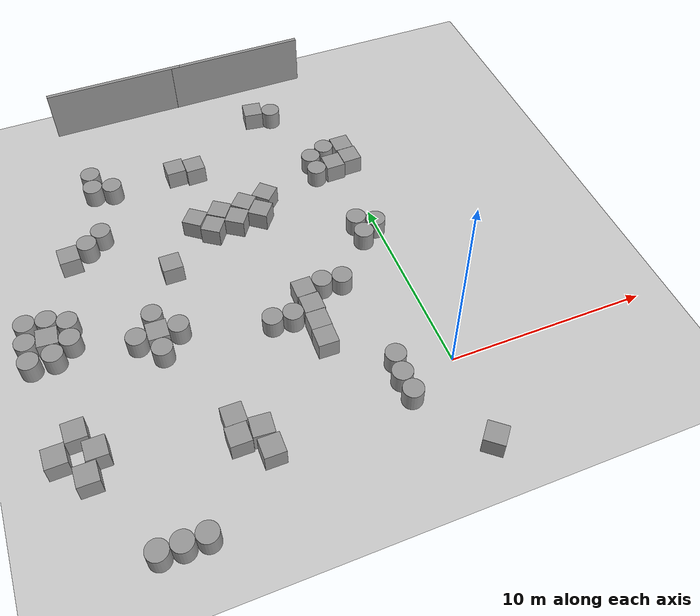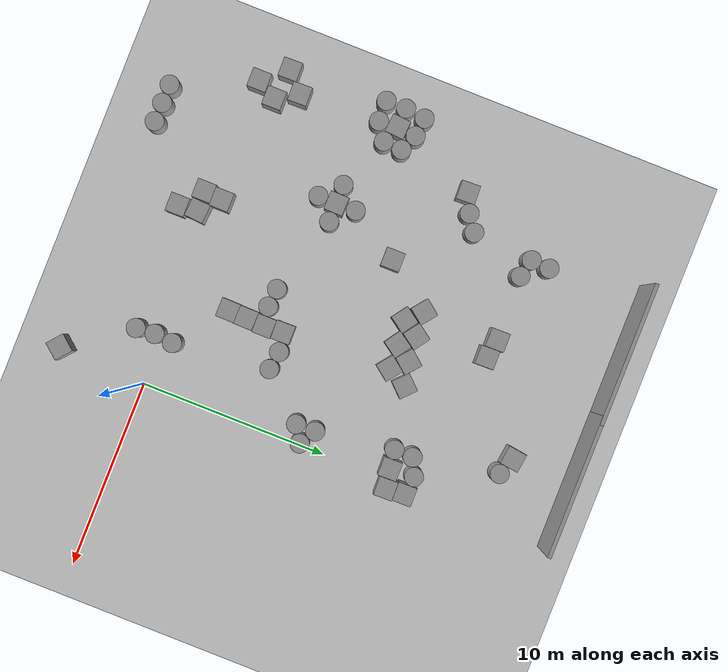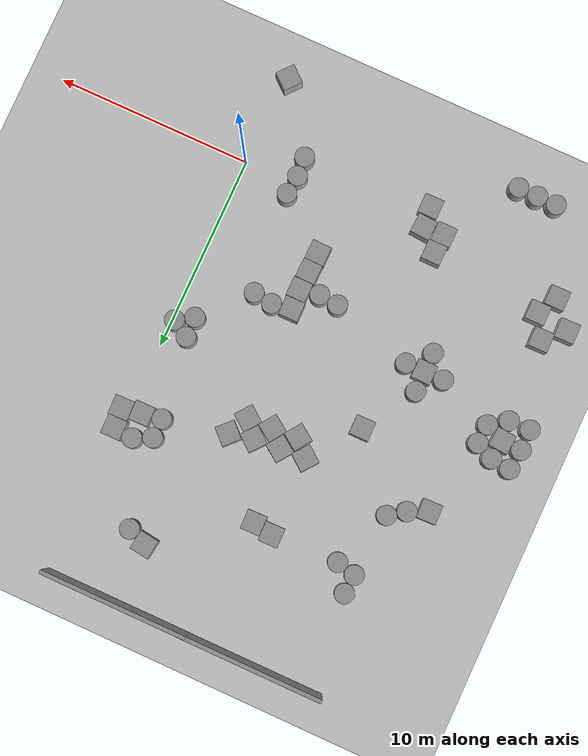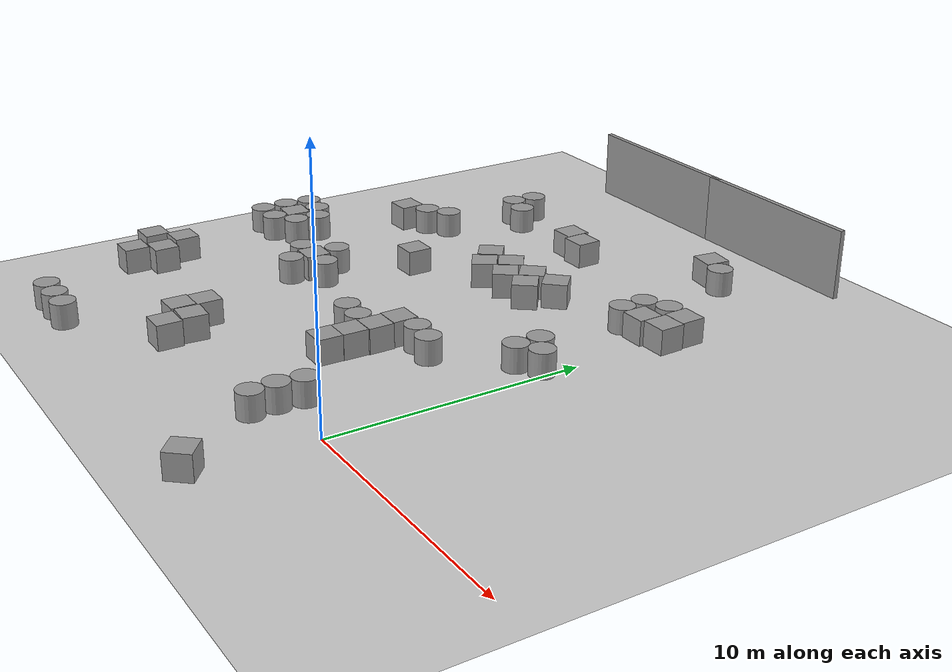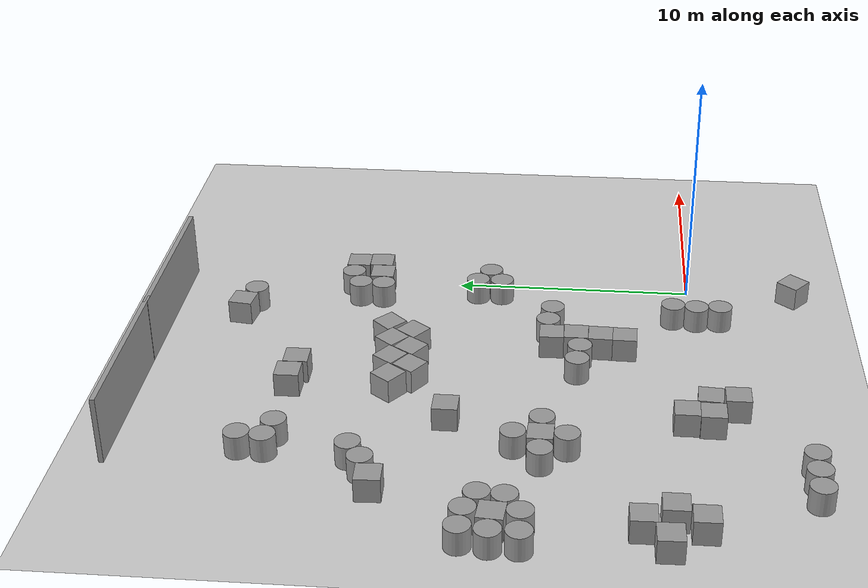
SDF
<sdf version="1.6">
 <world name="default">
  <model name="ground_plane">
   <static>1</static>
   <link name="link">
    <collision name="collision">
     <geometry><plane><normal>0 0 1</normal><size>100 100</size></plane></geometry>
     <surface><friction><ode><mu>100</mu><mu2>50</mu2></ode></friction></surface>
    </collision>
    <visual name="visual">
     <cast_shadows>0</cast_shadows>
     <geometry><plane><normal>0 0 1</normal><size>100 100</size></plane></geometry>
     <material>
      <script><uri>file://media/materials/scripts/gazebo.material</uri><name>Gazebo/Grey</name></script>
     </material>
    </visual>
   </link>
  </model>
  <model name="unit_box_1">
   <pose>-5.0981 4.77867 0.5 0 0 -0.005236</pose>
   <link name="link">
    <inertial>
     <mass>1</mass>
     <inertia>
      <ixx>0.166667</ixx>
      <ixy>0</ixy>
      <ixz>0</ixz>
      <iyy>0.166667</iyy>
      <iyz>0</iyz>
      <izz>0.166667</izz>
     </inertia>
    </inertial>
    <collision name="collision"><geometry><box><size>1 1 1</size></box></geometry></collision>
    <visual name="visual">
     <geometry><box><size>1 1 1</size></box></geometry>
     <material>
      <script><name>Gazebo/Grey</name><uri>file://media/materials/scripts/gazebo.material</uri></script>
     </material>
    </visual>
   </link>
  </model>
  <model name="unit_box_2">
   <pose>-5.14808 3.76937 0.5 0 0 -0.018732</pose>
   <link name="link">
    <inertial>
     <mass>1</mass>
     <inertia>
      <ixx>0.166667</ixx>
      <ixy>0</ixy>
      <ixz>0</ixz>
      <iyy>0.166667</iyy>
      <iyz>0</iyz>
      <izz>0.166667</izz>
     </inertia>
    </inertial>
    <collision name="collision"><geometry><box><size>1 1 1</size></box></geometry></collision>
    <visual name="visual">
     <geometry><box><size>1 1 1</size></box></geometry>
     <material>
      <script><name>Gazebo/Grey</name><uri>file://media/materials/scripts/gazebo.material</uri></script>
     </material>
    </visual>
   </link>
  </model>
  <model name="unit_box_8">
   <pose>-9.3394 -0.542282 0.5 0 0 -0.074034</pose>
   <link name="link">
    <inertial>
     <mass>1</mass>
     <inertia>
      <ixx>0.166667</ixx>
      <ixy>0</ixy>
      <ixz>0</ixz>
      <iyy>0.166667</iyy>
      <iyz>0</iyz>
      <izz>0.166667</izz>
     </inertia>
    </inertial>
    <collision name="collision"><geometry><box><size>1 1 1</size></box></geometry></collision>
    <visual name="visual">
     <geometry><box><size>1 1 1</size></box></geometry>
     <material>
      <script><name>Gazebo/Grey</name><uri>file://media/materials/scripts/gazebo.material</uri></script>
     </material>
    </visual>
   </link>
  </model>
  <model name="unit_cylinder_6">
   <pose>-2.57686 0.723564 0.499942 0 0 -0.000453</pose>
   <link name="link">
    <inertial>
     <mass>1</mass>
     <inertia><ixx>0.145833</ixx><ixy>0</ixy><ixz>0</ixz><iyy>0.145833</iyy><iyz>0</iyz><izz>0.125</izz></inertia>
    </inertial>
    <collision name="collision">
     <geometry><cylinder><radius>0.5</radius><length>1</length></cylinder></geometry>
    </collision>
    <visual name="visual">
     <geometry><cylinder><radius>0.5</radius><length>1</length></cylinder></geometry>
     <material>
      <script><name>Gazebo/Grey</name><uri>file://media/materials/scripts/gazebo.material</uri></script>
     </material>
    </visual>
   </link>
  </model>
  <model name="unit_cylinder_8_0">
   <pose>-0.197454 8.65118 0.499942 0 0 -0.115703</pose>
   <link name="link">
    <inertial>
     <mass>1</mass>
     <inertia><ixx>0.145833</ixx><ixy>0</ixy><ixz>0</ixz><iyy>0.145833</iyy><iyz>0</iyz><izz>0.125</izz></inertia>
    </inertial>
    <collision name="collision">
     <geometry><cylinder><radius>0.5</radius><length>1</length></cylinder></geometry>
    </collision>
    <visual name="visual">
     <geometry><cylinder><radius>0.5</radius><length>1</length></cylinder></geometry>
     <material>
      <script><name>Gazebo/Grey</name><uri>file://media/materials/scripts/gazebo.material</uri></script>
     </material>
    </visual>
   </link>
  </model>
  <model name="unit_box_15">
   <pose>-10.3952 -0.600275 0.5 0 0 -0.001077</pose>
   <link name="link">
    <inertial>
     <mass>1</mass>
     <inertia>
      <ixx>0.166667</ixx>
      <ixy>0</ixy>
      <ixz>0</ixz>
      <iyy>0.166667</iyy>
      <iyz>0</iyz>
      <izz>0.166667</izz>
     </inertia>
    </inertial>
    <collision name="collision"><geometry><box><size>1 1 1</size></box></geometry></collision>
    <visual name="visual">
     <geometry><box><size>1 1 1</size></box></geometry>
     <material>
      <script><name>Gazebo/Grey</name><uri>file://media/materials/scripts/gazebo.material</uri></script>
     </material>
    </visual>
   </link>
  </model>
  <model name="unit_cylinder_26">
   <pose>-2.6867 -0.270452 0.499942 0 -0 0.002292</pose>
   <link name="link">
    <inertial>
     <mass>1</mass>
     <inertia><ixx>0.145833</ixx><ixy>0</ixy><ixz>0</ixz><iyy>0.145833</iyy><iyz>0</iyz><izz>0.125</izz></inertia>
    </inertial>
    <collision name="collision">
     <geometry><cylinder><radius>0.5</radius><length>1</length></cylinder></geometry>
    </collision>
    <visual name="visual">
     <geometry><cylinder><radius>0.5</radius><length>1</length></cylinder></geometry>
     <material>
      <script><name>Gazebo/Grey</name><uri>file://media/materials/scripts/gazebo.material</uri></script>
     </material>
    </visual>
   </link>
  </model>
  <model name="unit_box_34">
   <pose>-9.24528 -1.60585 0.5 0 -0 0</pose>
   <link name="link">
    <inertial>
     <mass>1</mass>
     <inertia>
      <ixx>0.166667</ixx>
      <ixy>0</ixy>
      <ixz>0</ixz>
      <iyy>0.166667</iyy>
      <iyz>0</iyz>
      <izz>0.166667</izz>
     </inertia>
    </inertial>
    <collision name="collision"><geometry><box><size>1 1 1</size></box></geometry></collision>
    <visual name="visual">
     <geometry><box><size>1 1 1</size></box></geometry>
     <material>
      <script><name>Gazebo/Grey</name><uri>file://media/materials/scripts/gazebo.material</uri></script>
     </material>
    </visual>
   </link>
  </model>
  <model name="unit_box_37">
   <pose>-12.2689 5.91862 0.5 0 0 -0.024908</pose>
   <link name="link">
    <inertial>
     <mass>1</mass>
     <inertia>
      <ixx>0.166667</ixx>
      <ixy>0</ixy>
      <ixz>0</ixz>
      <iyy>0.166667</iyy>
      <iyz>0</iyz>
      <izz>0.166667</izz>
     </inertia>
    </inertial>
    <collision name="collision"><geometry><box><size>1 1 1</size></box></geometry></collision>
    <visual name="visual">
     <geometry><box><size>1 1 1</size></box></geometry>
     <material>
      <script><name>Gazebo/Grey</name><uri>file://media/materials/scripts/gazebo.material</uri></script>
     </material>
    </visual>
   </link>
  </model>
  <model name="unit_cylinder_32">
   <pose>-13.2104 16.2333 0.499942 0 -0 0.006978</pose>
   <link name="link">
    <inertial>
     <mass>1</mass>
     <inertia><ixx>0.145833</ixx><ixy>0</ixy><ixz>0</ixz><iyy>0.145833</iyy><iyz>0</iyz><izz>0.125</izz></inertia>
    </inertial>
    <collision name="collision">
     <geometry><cylinder><radius>0.5</radius><length>1</length></cylinder></geometry>
    </collision>
    <visual name="visual">
     <geometry><cylinder><radius>0.5</radius><length>1</length></cylinder></geometry>
     <material>
      <script><name>Gazebo/Grey</name><uri>file://media/materials/scripts/gazebo.material</uri></script>
     </material>
    </visual>
   </link>
  </model>
  <model name="unit_cylinder_33">
   <pose>-13.1457 17.2313 0.499942 0 0 -0.001377</pose>
   <link name="link">
    <inertial>
     <mass>1</mass>
     <inertia><ixx>0.145833</ixx><ixy>0</ixy><ixz>0</ixz><iyy>0.145833</iyy><iyz>0</iyz><izz>0.125</izz></inertia>
    </inertial>
    <collision name="collision">
     <geometry><cylinder><radius>0.5</radius><length>1</length></cylinder></geometry>
    </collision>
    <visual name="visual">
     <geometry><cylinder><radius>0.5</radius><length>1</length></cylinder></geometry>
     <material>
      <script><name>Gazebo/Grey</name><uri>file://media/materials/scripts/gazebo.material</uri></script>
     </material>
    </visual>
   </link>
  </model>
  <model name="unit_cylinder_34">
   <pose>-2.61658 -1.268 0.499942 0 0 -0.0024</pose>
   <link name="link">
    <inertial>
     <mass>1</mass>
     <inertia><ixx>0.145833</ixx><ixy>0</ixy><ixz>0</ixz><iyy>0.145833</iyy><iyz>0</iyz><izz>0.125</izz></inertia>
    </inertial>
    <collision name="collision">
     <geometry><cylinder><radius>0.5</radius><length>1</length></cylinder></geometry>
    </collision>
    <visual name="visual">
     <geometry><cylinder><radius>0.5</radius><length>1</length></cylinder></geometry>
     <material>
      <script><name>Gazebo/Grey</name><uri>file://media/materials/scripts/gazebo.material</uri></script>
     </material>
    </visual>
   </link>
  </model>
  <model name="unit_cylinder_8_5">
   <pose>-11.2686 5.90923 0.499942 0 0 -0.009421</pose>
   <link name="link">
    <inertial>
     <mass>1</mass>
     <inertia><ixx>0.145833</ixx><ixy>0</ixy><ixz>0</ixz><iyy>0.145833</iyy><iyz>0</iyz><izz>0.125</izz></inertia>
    </inertial>
    <collision name="collision">
     <geometry><cylinder><radius>0.5</radius><length>1</length></cylinder></geometry>
    </collision>
    <visual name="visual">
     <geometry><cylinder><radius>0.5</radius><length>1</length></cylinder></geometry>
     <material>
      <script><name>Gazebo/Grey</name><uri>file://media/materials/scripts/gazebo.material</uri></script>
     </material>
    </visual>
   </link>
  </model>
  <model name="unit_cylinder_8_6">
   <pose>-13.2697 5.89996 0.499942 0 0 -0.00064</pose>
   <link name="link">
    <inertial>
     <mass>1</mass>
     <inertia><ixx>0.145833</ixx><ixy>0</ixy><ixz>0</ixz><iyy>0.145833</iyy><iyz>0</iyz><izz>0.125</izz></inertia>
    </inertial>
    <collision name="collision">
     <geometry><cylinder><radius>0.5</radius><length>1</length></cylinder></geometry>
    </collision>
    <visual name="visual">
     <geometry><cylinder><radius>0.5</radius><length>1</length></cylinder></geometry>
     <material>
      <script><name>Gazebo/Grey</name><uri>file://media/materials/scripts/gazebo.material</uri></script>
     </material>
    </visual>
   </link>
  </model>
  <model name="unit_cylinder_8_7">
   <pose>-12.2859 4.91815 0.499942 0 -0 0.004002</pose>
   <link name="link">
    <inertial>
     <mass>1</mass>
     <inertia><ixx>0.145833</ixx><ixy>0</ixy><ixz>0</ixz><iyy>0.145833</iyy><iyz>0</iyz><izz>0.125</izz></inertia>
    </inertial>
    <collision name="collision">
     <geometry><cylinder><radius>0.5</radius><length>1</length></cylinder></geometry>
    </collision>
    <visual name="visual">
     <geometry><cylinder><radius>0.5</radius><length>1</length></cylinder></geometry>
     <material>
      <script><name>Gazebo/Grey</name><uri>file://media/materials/scripts/gazebo.material</uri></script>
     </material>
    </visual>
   </link>
  </model>
  <model name="unit_cylinder_8_8">
   <pose>-12.2792 6.95978 0.499942 0 -0 0</pose>
   <link name="link">
    <inertial>
     <mass>1</mass>
     <inertia><ixx>0.145833</ixx><ixy>0</ixy><ixz>0</ixz><iyy>0.145833</iyy><iyz>0</iyz><izz>0.125</izz></inertia>
    </inertial>
    <collision name="collision">
     <geometry><cylinder><radius>0.5</radius><length>1</length></cylinder></geometry>
    </collision>
    <visual name="visual">
     <geometry><cylinder><radius>0.5</radius><length>1</length></cylinder></geometry>
     <material>
      <script><name>Gazebo/Grey</name><uri>file://media/materials/scripts/gazebo.material</uri></script>
     </material>
    </visual>
   </link>
  </model>
  <model name="unit_box_16">
   <pose>-7.78105 15.9504 0.5 0 -0 0.016362</pose>
   <link name="link">
    <inertial>
     <mass>1</mass>
     <inertia>
      <ixx>0.166667</ixx>
      <ixy>0</ixy>
      <ixz>0</ixz>
      <iyy>0.166667</iyy>
      <iyz>0</iyz>
      <izz>0.166667</izz>
     </inertia>
    </inertial>
    <collision name="collision"><geometry><box><size>1 1 1</size></box></geometry></collision>
    <visual name="visual">
     <geometry><box><size>1 1 1</size></box></geometry>
     <material>
      <script><name>Gazebo/Grey</name><uri>file://media/materials/scripts/gazebo.material</uri></script>
     </material>
    </visual>
   </link>
  </model>
  <model name="unit_box_17">
   <pose>-8.79856 16.1214 0.5 0 -0 0.008021</pose>
   <link name="link">
    <inertial>
     <mass>1</mass>
     <inertia>
      <ixx>0.166667</ixx>
      <ixy>0</ixy>
      <ixz>0</ixz>
      <iyy>0.166667</iyy>
      <iyz>0</iyz>
      <izz>0.166667</izz>
     </inertia>
    </inertial>
    <collision name="collision"><geometry><box><size>1 1 1</size></box></geometry></collision>
    <visual name="visual">
     <geometry><box><size>1 1 1</size></box></geometry>
     <material>
      <script><name>Gazebo/Grey</name><uri>file://media/materials/scripts/gazebo.material</uri></script>
     </material>
    </visual>
   </link>
  </model>
  <model name="unit_cylinder_8">
   <pose>-2.48633 18.702 0.499942 0 -0 0.042694</pose>
   <link name="link">
    <inertial>
     <mass>1</mass>
     <inertia><ixx>0.145833</ixx><ixy>0</ixy><ixz>0</ixz><iyy>0.145833</iyy><iyz>0</iyz><izz>0.125</izz></inertia>
    </inertial>
    <collision name="collision">
     <geometry><cylinder><radius>0.5</radius><length>1</length></cylinder></geometry>
    </collision>
    <visual name="visual">
     <geometry><cylinder><radius>0.5</radius><length>1</length></cylinder></geometry>
     <material>
      <script><name>Gazebo/Grey</name><uri>file://media/materials/scripts/gazebo.material</uri></script>
     </material>
    </visual>
   </link>
  </model>
  <model name="unit_box_20_0">
   <pose>-3.44337 19.0871 0.5 0 0 -0.134541</pose>
   <link name="link">
    <inertial>
     <mass>1</mass>
     <inertia>
      <ixx>0.166667</ixx>
      <ixy>0</ixy>
      <ixz>0</ixz>
      <iyy>0.166667</iyy>
      <iyz>0</iyz>
      <izz>0.166667</izz>
     </inertia>
    </inertial>
    <collision name="collision"><geometry><box><size>1 1 1</size></box></geometry></collision>
    <visual name="visual">
     <geometry><box><size>1 1 1</size></box></geometry>
     <material>
      <script><name>Gazebo/Grey</name><uri>file://media/materials/scripts/gazebo.material</uri></script>
     </material>
    </visual>
   </link>
  </model>
  <model name="unit_cylinder_47">
   <pose>-1.04611 8.12184 0.499942 0 -0 0.038058</pose>
   <link name="link">
    <inertial>
     <mass>1</mass>
     <inertia><ixx>0.145833</ixx><ixy>0</ixy><ixz>0</ixz><iyy>0.145833</iyy><iyz>0</iyz><izz>0.125</izz></inertia>
    </inertial>
    <collision name="collision">
     <geometry><cylinder><radius>0.5</radius><length>1</length></cylinder></geometry>
    </collision>
    <visual name="visual">
     <geometry><cylinder><radius>0.5</radius><length>1</length></cylinder></geometry>
     <material>
      <script><name>Gazebo/Grey</name><uri>file://media/materials/scripts/gazebo.material</uri></script>
     </material>
    </visual>
   </link>
  </model>
  <model name="unit_cylinder_9_0">
   <pose>-14.2664 12.4174 0.499942 0 0 -0.02041</pose>
   <link name="link">
    <inertial>
     <mass>1</mass>
     <inertia><ixx>0.145833</ixx><ixy>0</ixy><ixz>0</ixz><iyy>0.145833</iyy><iyz>0</iyz><izz>0.125</izz></inertia>
    </inertial>
    <collision name="collision">
     <geometry><cylinder><radius>0.5</radius><length>1</length></cylinder></geometry>
    </collision>
    <visual name="visual">
     <geometry><cylinder><radius>0.5</radius><length>1</length></cylinder></geometry>
     <material>
      <script><name>Gazebo/Grey</name><uri>file://media/materials/scripts/gazebo.material</uri></script>
     </material>
    </visual>
   </link>
  </model>
  <model name="unit_cylinder_9_1">
   <pose>-13.4507 12.9959 0.499942 0 0 -0.001885</pose>
   <link name="link">
    <inertial>
     <mass>1</mass>
     <inertia><ixx>0.145833</ixx><ixy>0</ixy><ixz>0</ixz><iyy>0.145833</iyy><iyz>0</iyz><izz>0.125</izz></inertia>
    </inertial>
    <collision name="collision">
     <geometry><cylinder><radius>0.5</radius><length>1</length></cylinder></geometry>
    </collision>
    <visual name="visual">
     <geometry><cylinder><radius>0.5</radius><length>1</length></cylinder></geometry>
     <material>
      <script><name>Gazebo/Grey</name><uri>file://media/materials/scripts/gazebo.material</uri></script>
     </material>
    </visual>
   </link>
  </model>
  <model name="unit_cylinder_9_3">
   <pose>-1.05619 9.16437 0.499942 0 -0 0.050097</pose>
   <link name="link">
    <inertial>
     <mass>1</mass>
     <inertia><ixx>0.145833</ixx><ixy>0</ixy><ixz>0</ixz><iyy>0.145833</iyy><iyz>0</iyz><izz>0.125</izz></inertia>
    </inertial>
    <collision name="collision">
     <geometry><cylinder><radius>0.5</radius><length>1</length></cylinder></geometry>
    </collision>
    <visual name="visual">
     <geometry><cylinder><radius>0.5</radius><length>1</length></cylinder></geometry>
     <material>
      <script><name>Gazebo/Grey</name><uri>file://media/materials/scripts/gazebo.material</uri></script>
     </material>
    </visual>
   </link>
  </model>
  <model name="unit_box_22_0">
   <pose>0.335483 13.5803 0.5 0 -0 0.021221</pose>
   <link name="link">
    <inertial>
     <mass>1</mass>
     <inertia>
      <ixx>0.166667</ixx>
      <ixy>0</ixy>
      <ixz>0</ixz>
      <iyy>0.166667</iyy>
      <iyz>0</iyz>
      <izz>0.166667</izz>
     </inertia>
    </inertial>
    <collision name="collision"><geometry><box><size>1 1 1</size></box></geometry></collision>
    <visual name="visual">
     <geometry><box><size>1 1 1</size></box></geometry>
     <material>
      <script><name>Gazebo/Grey</name><uri>file://media/materials/scripts/gazebo.material</uri></script>
     </material>
    </visual>
   </link>
  </model>
  <model name="unit_box_22_1">
   <pose>-0.673832 13.4194 0.5 0 -0 0.012386</pose>
   <link name="link">
    <inertial>
     <mass>1</mass>
     <inertia>
      <ixx>0.166667</ixx>
      <ixy>0</ixy>
      <ixz>0</ixz>
      <iyy>0.166667</iyy>
      <iyz>0</iyz>
      <izz>0.166667</izz>
     </inertia>
    </inertial>
    <collision name="collision"><geometry><box><size>1 1 1</size></box></geometry></collision>
    <visual name="visual">
     <geometry><box><size>1 1 1</size></box></geometry>
     <material>
      <script><name>Gazebo/Grey</name><uri>file://media/materials/scripts/gazebo.material</uri></script>
     </material>
    </visual>
   </link>
  </model>
  <model name="unit_box_3">
   <pose>-17.0576 7.40549 0.5 0 0 -0.081756</pose>
   <link name="link">
    <inertial>
     <mass>1</mass>
     <inertia>
      <ixx>0.166667</ixx>
      <ixy>0</ixy>
      <ixz>0</ixz>
      <iyy>0.166667</iyy>
      <iyz>0</iyz>
      <izz>0.166667</izz>
     </inertia>
    </inertial>
    <collision name="collision"><geometry><box><size>1 1 1</size></box></geometry></collision>
    <visual name="visual">
     <geometry><box><size>1 1 1</size></box></geometry>
     <material>
      <script><name>Gazebo/Grey</name><uri>file://media/materials/scripts/gazebo.material</uri></script>
     </material>
    </visual>
   </link>
  </model>
  <model name="unit_cylinder_36">
   <pose>-16.9316 8.41638 0.499942 0 -0 0.132036</pose>
   <link name="link">
    <inertial>
     <mass>1</mass>
     <inertia><ixx>0.145833</ixx><ixy>0</ixy><ixz>0</ixz><iyy>0.145833</iyy><iyz>0</iyz><izz>0.125</izz></inertia>
    </inertial>
    <collision name="collision">
     <geometry><cylinder><radius>0.5</radius><length>1</length></cylinder></geometry>
    </collision>
    <visual name="visual">
     <geometry><cylinder><radius>0.5</radius><length>1</length></cylinder></geometry>
     <material>
      <script><name>Gazebo/Grey</name><uri>file://media/materials/scripts/gazebo.material</uri></script>
     </material>
    </visual>
   </link>
  </model>
  <model name="unit_box_18_clone">
   <pose>-0.283506 -4.5515 0.5 0 -0 0.870361</pose>
   <link name="link">
    <inertial>
     <mass>1</mass>
     <inertia>
      <ixx>0.166667</ixx>
      <ixy>0</ixy>
      <ixz>0</ixz>
      <iyy>0.166667</iyy>
      <iyz>0</iyz>
      <izz>0.166667</izz>
     </inertia>
    </inertial>
    <collision name="collision"><geometry><box><size>1 1 1</size></box></geometry></collision>
    <visual name="visual">
     <geometry><box><size>1 1 1</size></box></geometry>
     <material>
      <script><name>Gazebo/Grey</name><uri>file://media/materials/scripts/gazebo.material</uri></script>
     </material>
    </visual>
   </link>
  </model>
  <model name="unit_box_41">
   <pose>-15.251 11.9682 0.5 0 -0 0.035962</pose>
   <link name="link">
    <inertial>
     <mass>1</mass>
     <inertia>
      <ixx>0.166667</ixx>
      <ixy>0</ixy>
      <ixz>0</ixz>
      <iyy>0.166667</iyy>
      <iyz>0</iyz>
      <izz>0.166667</izz>
     </inertia>
    </inertial>
    <collision name="collision"><geometry><box><size>1 1 1</size></box></geometry></collision>
    <visual name="visual">
     <geometry><box><size>1 1 1</size></box></geometry>
     <material>
      <script><name>Gazebo/Grey</name><uri>file://media/materials/scripts/gazebo.material</uri></script>
     </material>
    </visual>
   </link>
  </model>
  <model name="unit_box_44">
   <pose>-10.3091 0.399738 0.5 0 0 -0.001056</pose>
   <link name="link">
    <inertial>
     <mass>1</mass>
     <inertia>
      <ixx>0.166667</ixx>
      <ixy>0</ixy>
      <ixz>0</ixz>
      <iyy>0.166667</iyy>
      <iyz>0</iyz>
      <izz>0.166667</izz>
     </inertia>
    </inertial>
    <collision name="collision"><geometry><box><size>1 1 1</size></box></geometry></collision>
    <visual name="visual">
     <geometry><box><size>1 1 1</size></box></geometry>
     <material>
      <script><name>Gazebo/Grey</name><uri>file://media/materials/scripts/gazebo.material</uri></script>
     </material>
    </visual>
   </link>
  </model>
  <model name="unit_box_33_0">
   <pose>0.262747 14.5848 0.5 0 -0 0.00954</pose>
   <link name="link">
    <inertial>
     <mass>1</mass>
     <inertia>
      <ixx>0.166667</ixx>
      <ixy>0</ixy>
      <ixz>0</ixz>
      <iyy>0.166667</iyy>
      <iyz>0</iyz>
      <izz>0.166667</izz>
     </inertia>
    </inertial>
    <collision name="collision"><geometry><box><size>1 1 1</size></box></geometry></collision>
    <visual name="visual">
     <geometry><box><size>1 1 1</size></box></geometry>
     <material>
      <script><name>Gazebo/Grey</name><uri>file://media/materials/scripts/gazebo.material</uri></script>
     </material>
    </visual>
   </link>
  </model>
  <model name="unit_cylinder_37">
   <pose>-0.738421 14.6965 0.499942 0 0 -0.075601</pose>
   <link name="link">
    <inertial>
     <mass>1</mass>
     <inertia><ixx>0.145833</ixx><ixy>0</ixy><ixz>0</ixz><iyy>0.145833</iyy><iyz>0</iyz><izz>0.125</izz></inertia>
    </inertial>
    <collision name="collision">
     <geometry><cylinder><radius>0.5</radius><length>1</length></cylinder></geometry>
    </collision>
    <visual name="visual">
     <geometry><cylinder><radius>0.5</radius><length>1</length></cylinder></geometry>
     <material>
      <script><name>Gazebo/Grey</name><uri>file://media/materials/scripts/gazebo.material</uri></script>
     </material>
    </visual>
   </link>
  </model>
  <model name="unit_cylinder_38">
   <pose>-1.64861 14.2683 0.499942 0 0 -0.024059</pose>
   <link name="link">
    <inertial>
     <mass>1</mass>
     <inertia><ixx>0.145833</ixx><ixy>0</ixy><ixz>0</ixz><iyy>0.145833</iyy><iyz>0</iyz><izz>0.125</izz></inertia>
    </inertial>
    <collision name="collision">
     <geometry><cylinder><radius>0.5</radius><length>1</length></cylinder></geometry>
    </collision>
    <visual name="visual">
     <geometry><cylinder><radius>0.5</radius><length>1</length></cylinder></geometry>
     <material>
      <script><name>Gazebo/Grey</name><uri>file://media/materials/scripts/gazebo.material</uri></script>
     </material>
    </visual>
   </link>
  </model>
  <model name="unit_box_18_clone_clone">
   <pose>-8.76046 12.1182 0.5 0 -0 0.91408</pose>
   <link name="link">
    <inertial>
     <mass>1</mass>
     <inertia>
      <ixx>0.166667</ixx>
      <ixy>0</ixy>
      <ixz>0</ixz>
      <iyy>0.166667</iyy>
      <iyz>0</iyz>
      <izz>0.166667</izz>
     </inertia>
    </inertial>
    <collision name="collision"><geometry><box><size>1 1 1</size></box></geometry></collision>
    <visual name="visual">
     <geometry><box><size>1 1 1</size></box></geometry>
     <material>
      <script><name>Gazebo/Grey</name><uri>file://media/materials/scripts/gazebo.material</uri></script>
     </material>
    </visual>
   </link>
  </model>
  <model name="unit_box_18_clone_clone_0">
   <pose>-7.44435 12.2083 0.5 0 -0 0.948652</pose>
   <link name="link">
    <inertial>
     <mass>1</mass>
     <inertia>
      <ixx>0.166667</ixx>
      <ixy>0</ixy>
      <ixz>0</ixz>
      <iyy>0.166667</iyy>
      <iyz>0</iyz>
      <izz>0.166667</izz>
     </inertia>
    </inertial>
    <collision name="collision"><geometry><box><size>1 1 1</size></box></geometry></collision>
    <visual name="visual">
     <geometry><box><size>1 1 1</size></box></geometry>
     <material>
      <script><name>Gazebo/Grey</name><uri>file://media/materials/scripts/gazebo.material</uri></script>
     </material>
    </visual>
   </link>
  </model>
  <model name="unit_box_18_clone_clone_1">
   <pose>-6.09621 12.3085 0.5 0 -0 0.871473</pose>
   <link name="link">
    <inertial>
     <mass>1</mass>
     <inertia>
      <ixx>0.166667</ixx>
      <ixy>0</ixy>
      <ixz>0</ixz>
      <iyy>0.166667</iyy>
      <iyz>0</iyz>
      <izz>0.166667</izz>
     </inertia>
    </inertial>
    <collision name="collision"><geometry><box><size>1 1 1</size></box></geometry></collision>
    <visual name="visual">
     <geometry><box><size>1 1 1</size></box></geometry>
     <material>
      <script><name>Gazebo/Grey</name><uri>file://media/materials/scripts/gazebo.material</uri></script>
     </material>
    </visual>
   </link>
  </model>
  <model name="unit_box_18_clone_clone_2">
   <pose>-4.86881 12.5616 0.5 0 -0 0.809134</pose>
   <link name="link">
    <inertial>
     <mass>1</mass>
     <inertia>
      <ixx>0.166667</ixx>
      <ixy>0</ixy>
      <ixz>0</ixz>
      <iyy>0.166667</iyy>
      <iyz>0</iyz>
      <izz>0.166667</izz>
     </inertia>
    </inertial>
    <collision name="collision"><geometry><box><size>1 1 1</size></box></geometry></collision>
    <visual name="visual">
     <geometry><box><size>1 1 1</size></box></geometry>
     <material>
      <script><name>Gazebo/Grey</name><uri>file://media/materials/scripts/gazebo.material</uri></script>
     </material>
    </visual>
   </link>
  </model>
  <model name="unit_cylinder_11">
   <pose>-12.2364 16.0064 0.499942 0 0 -5.6e-05</pose>
   <link name="link">
    <inertial>
     <mass>1</mass>
     <inertia><ixx>0.145833</ixx><ixy>0</ixy><ixz>0</ixz><iyy>0.145833</iyy><iyz>0</iyz><izz>0.125</izz></inertia>
    </inertial>
    <collision name="collision">
     <geometry><cylinder><radius>0.5</radius><length>1</length></cylinder></geometry>
    </collision>
    <visual name="visual">
     <geometry><cylinder><radius>0.5</radius><length>1</length></cylinder></geometry>
     <material>
      <script><name>Gazebo/Grey</name><uri>file://media/materials/scripts/gazebo.material</uri></script>
     </material>
    </visual>
   </link>
  </model>
  <model name="grey_wall">
   <static>1</static>
   <link name="link">
    <pose>0 0 1.4 0 -0 0</pose>
    <collision name="collision"><geometry><box><size>7.5 0.2 2.8</size></box></geometry></collision>
    <visual name="visual">
     <cast_shadows>0</cast_shadows>
     <geometry><box><size>7.5 0.2 2.8</size></box></geometry>
     <material>
      <script>
       <uri>model://grey_wall/materials/scripts</uri>
       <uri>model://grey_wall/materials/textures</uri>
       <name>vrc/grey_wall</name>
      </script>
     </material>
    </visual>
   </link>
   <pose>-10.4226 22.1655 0 0 -0 0</pose>
  </model>
  <model name="grey_wall_0">
   <static>1</static>
   <link name="link">
    <pose>0 0 1.4 0 -0 0</pose>
    <collision name="collision"><geometry><box><size>7.5 0.2 2.8</size></box></geometry></collision>
    <visual name="visual">
     <cast_shadows>0</cast_shadows>
     <geometry><box><size>7.5 0.2 2.8</size></box></geometry>
     <material>
      <script>
       <uri>model://grey_wall/materials/scripts</uri>
       <uri>model://grey_wall/materials/textures</uri>
       <name>vrc/grey_wall</name>
      </script>
     </material>
    </visual>
   </link>
   <pose>-3.40136 22.1568 0 0 -0 0</pose>
  </model>
  <model name="unit_box_33">
   <pose>-5.14925 5.78806 0.5 0 -0 0.013953</pose>
   <link name="link">
    <inertial>
     <mass>1</mass>
     <inertia>
      <ixx>0.166667</ixx>
      <ixy>0</ixy>
      <ixz>0</ixz>
      <iyy>0.166667</iyy>
      <iyz>0</iyz>
      <izz>0.166667</izz>
     </inertia>
    </inertial>
    <collision name="collision"><geometry><box><size>1 1 1</size></box></geometry></collision>
    <visual name="visual">
     <geometry><box><size>1 1 1</size></box></geometry>
     <material>
      <script><name>Gazebo/Grey</name><uri>file://media/materials/scripts/gazebo.material</uri></script>
     </material>
    </visual>
   </link>
  </model>
  <model name="unit_box_42">
   <pose>-5.18032 2.76921 0.5 0 0 -0.017566</pose>
   <link name="link">
    <inertial>
     <mass>1</mass>
     <inertia>
      <ixx>0.166667</ixx>
      <ixy>0</ixy>
      <ixz>0</ixz>
      <iyy>0.166667</iyy>
      <iyz>0</iyz>
      <izz>0.166667</izz>
     </inertia>
    </inertial>
    <collision name="collision"><geometry><box><size>1 1 1</size></box></geometry></collision>
    <visual name="visual">
     <geometry><box><size>1 1 1</size></box></geometry>
     <material>
      <script><name>Gazebo/Grey</name><uri>file://media/materials/scripts/gazebo.material</uri></script>
     </material>
    </visual>
   </link>
  </model>
  <model name="unit_box_18_clone_clone_0_clone">
   <pose>-8.01996 11.3323 0.5 0 -0 0.960879</pose>
   <link name="link">
    <inertial>
     <mass>1</mass>
     <inertia>
      <ixx>0.166667</ixx>
      <ixy>0</ixy>
      <ixz>0</ixz>
      <iyy>0.166667</iyy>
      <iyz>0</iyz>
      <izz>0.166667</izz>
     </inertia>
    </inertial>
    <collision name="collision"><geometry><box><size>1 1 1</size></box></geometry></collision>
    <visual name="visual">
     <geometry><box><size>1 1 1</size></box></geometry>
     <material>
      <script><name>Gazebo/Grey</name><uri>file://media/materials/scripts/gazebo.material</uri></script>
     </material>
    </visual>
   </link>
  </model>
  <model name="unit_box_18_clone_clone_0_clone_0">
   <pose>-6.7163 11.4562 0.5 0 -0 0.967725</pose>
   <link name="link">
    <inertial>
     <mass>1</mass>
     <inertia>
      <ixx>0.166667</ixx>
      <ixy>0</ixy>
      <ixz>0</ixz>
      <iyy>0.166667</iyy>
      <iyz>0</iyz>
      <izz>0.166667</izz>
     </inertia>
    </inertial>
    <collision name="collision"><geometry><box><size>1 1 1</size></box></geometry></collision>
    <visual name="visual">
     <geometry><box><size>1 1 1</size></box></geometry>
     <material>
      <script><name>Gazebo/Grey</name><uri>file://media/materials/scripts/gazebo.material</uri></script>
     </material>
    </visual>
   </link>
  </model>
  <model name="unit_box_18_clone_clone_0_clone_1">
   <pose>-5.43294 11.5101 0.5 0 -0 0.913519</pose>
   <link name="link">
    <inertial>
     <mass>1</mass>
     <inertia>
      <ixx>0.166667</ixx>
      <ixy>0</ixy>
      <ixz>0</ixz>
      <iyy>0.166667</iyy>
      <iyz>0</iyz>
      <izz>0.166667</izz>
     </inertia>
    </inertial>
    <collision name="collision"><geometry><box><size>1 1 1</size></box></geometry></collision>
    <visual name="visual">
     <geometry><box><size>1 1 1</size></box></geometry>
     <material>
      <script><name>Gazebo/Grey</name><uri>file://media/materials/scripts/gazebo.material</uri></script>
     </material>
    </visual>
   </link>
  </model>
  <model name="unit_cylinder_14_1">
   <pose>-1.67205 13.2663 0.499942 0 0 -0.009614</pose>
   <link name="link">
    <inertial>
     <mass>1</mass>
     <inertia><ixx>0.145833</ixx><ixy>0</ixy><ixz>0</ixz><iyy>0.145833</iyy><iyz>0</iyz><izz>0.125</izz></inertia>
    </inertial>
    <collision name="collision">
     <geometry><cylinder><radius>0.5</radius><length>1</length></cylinder></geometry>
    </collision>
    <visual name="visual">
     <geometry><cylinder><radius>0.5</radius><length>1</length></cylinder></geometry>
     <material>
      <script><name>Gazebo/Grey</name><uri>file://media/materials/scripts/gazebo.material</uri></script>
     </material>
    </visual>
   </link>
  </model>
  <model name="unit_box_49">
   <pose>-10.6583 9.64281 0.5 0 -0 0</pose>
   <link name="link">
    <inertial>
     <mass>1</mass>
     <inertia>
      <ixx>0.166667</ixx>
      <ixy>0</ixy>
      <ixz>0</ixz>
      <iyy>0.166667</iyy>
      <iyz>0</iyz>
      <izz>0.166667</izz>
     </inertia>
    </inertial>
    <collision name="collision"><geometry><box><size>1 1 1</size></box></geometry></collision>
    <visual name="visual">
     <geometry><box><size>1 1 1</size></box></geometry>
     <material>
      <script><name>Gazebo/Grey</name><uri>file://media/materials/scripts/gazebo.material</uri></script>
     </material>
    </visual>
   </link>
  </model>
  <model name="unit_cylinder_14_5">
   <pose>-6.09922 4.6042 0.499942 0 -0 0.003334</pose>
   <link name="link">
    <inertial>
     <mass>1</mass>
     <inertia><ixx>0.145833</ixx><ixy>0</ixy><ixz>0</ixz><iyy>0.145833</iyy><iyz>0</iyz><izz>0.125</izz></inertia>
    </inertial>
    <collision name="collision">
     <geometry><cylinder><radius>0.5</radius><length>1</length></cylinder></geometry>
    </collision>
    <visual name="visual">
     <geometry><cylinder><radius>0.5</radius><length>1</length></cylinder></geometry>
     <material>
      <script><name>Gazebo/Grey</name><uri>file://media/materials/scripts/gazebo.material</uri></script>
     </material>
    </visual>
   </link>
  </model>
  <model name="unit_cylinder_14_6">
   <pose>-7.0953 4.69266 0.499942 0 0 -0.00257</pose>
   <link name="link">
    <inertial>
     <mass>1</mass>
     <inertia><ixx>0.145833</ixx><ixy>0</ixy><ixz>0</ixz><iyy>0.145833</iyy><iyz>0</iyz><izz>0.125</izz></inertia>
    </inertial>
    <collision name="collision">
     <geometry><cylinder><radius>0.5</radius><length>1</length></cylinder></geometry>
    </collision>
    <visual name="visual">
     <geometry><cylinder><radius>0.5</radius><length>1</length></cylinder></geometry>
     <material>
      <script><name>Gazebo/Grey</name><uri>file://media/materials/scripts/gazebo.material</uri></script>
     </material>
    </visual>
   </link>
  </model>
  <model name="unit_cylinder_14_7">
   <pose>-4.14623 5.96557 0.499942 0 0 -0.019561</pose>
   <link name="link">
    <inertial>
     <mass>1</mass>
     <inertia><ixx>0.145833</ixx><ixy>0</ixy><ixz>0</ixz><iyy>0.145833</iyy><iyz>0</iyz><izz>0.125</izz></inertia>
    </inertial>
    <collision name="collision">
     <geometry><cylinder><radius>0.5</radius><length>1</length></cylinder></geometry>
    </collision>
    <visual name="visual">
     <geometry><cylinder><radius>0.5</radius><length>1</length></cylinder></geometry>
     <material>
      <script><name>Gazebo/Grey</name><uri>file://media/materials/scripts/gazebo.material</uri></script>
     </material>
    </visual>
   </link>
  </model>
  <model name="unit_cylinder_14_8">
   <pose>-3.156 5.82596 0.499942 0 0 -0.000346</pose>
   <link name="link">
    <inertial>
     <mass>1</mass>
     <inertia><ixx>0.145833</ixx><ixy>0</ixy><ixz>0</ixz><iyy>0.145833</iyy><iyz>0</iyz><izz>0.125</izz></inertia>
    </inertial>
    <collision name="collision">
     <geometry><cylinder><radius>0.5</radius><length>1</length></cylinder></geometry>
    </collision>
    <visual name="visual">
     <geometry><cylinder><radius>0.5</radius><length>1</length></cylinder></geometry>
     <material>
      <script><name>Gazebo/Grey</name><uri>file://media/materials/scripts/gazebo.material</uri></script>
     </material>
    </visual>
   </link>
  </model>
  <model name="unit_cylinder_35_0">
   <pose>-16.023 7.9987 0.499942 0 -0 0.065136</pose>
   <link name="link">
    <inertial>
     <mass>1</mass>
     <inertia><ixx>0.145833</ixx><ixy>0</ixy><ixz>0</ixz><iyy>0.145833</iyy><iyz>0</iyz><izz>0.125</izz></inertia>
    </inertial>
    <collision name="collision">
     <geometry><cylinder><radius>0.5</radius><length>1</length></cylinder></geometry>
    </collision>
    <visual name="visual">
     <geometry><cylinder><radius>0.5</radius><length>1</length></cylinder></geometry>
     <material>
      <script><name>Gazebo/Grey</name><uri>file://media/materials/scripts/gazebo.material</uri></script>
     </material>
    </visual>
   </link>
  </model>
  <model name="unit_cylinder_35_1">
   <pose>-16.0864 7.00069 0.499942 0 -0 0.047898</pose>
   <link name="link">
    <inertial>
     <mass>1</mass>
     <inertia><ixx>0.145833</ixx><ixy>0</ixy><ixz>0</ixz><iyy>0.145833</iyy><iyz>0</iyz><izz>0.125</izz></inertia>
    </inertial>
    <collision name="collision">
     <geometry><cylinder><radius>0.5</radius><length>1</length></cylinder></geometry>
    </collision>
    <visual name="visual">
     <geometry><cylinder><radius>0.5</radius><length>1</length></cylinder></geometry>
     <material>
      <script><name>Gazebo/Grey</name><uri>file://media/materials/scripts/gazebo.material</uri></script>
     </material>
    </visual>
   </link>
  </model>
  <model name="unit_cylinder_35_2">
   <pose>-16.9651 6.39452 0.499942 0 0 -0.015192</pose>
   <link name="link">
    <inertial>
     <mass>1</mass>
     <inertia><ixx>0.145833</ixx><ixy>0</ixy><ixz>0</ixz><iyy>0.145833</iyy><iyz>0</iyz><izz>0.125</izz></inertia>
    </inertial>
    <collision name="collision">
     <geometry><cylinder><radius>0.5</radius><length>1</length></cylinder></geometry>
    </collision>
    <visual name="visual">
     <geometry><cylinder><radius>0.5</radius><length>1</length></cylinder></geometry>
     <material>
      <script><name>Gazebo/Grey</name><uri>file://media/materials/scripts/gazebo.material</uri></script>
     </material>
    </visual>
   </link>
  </model>
  <model name="unit_cylinder_35_3">
   <pose>-18.0608 6.37656 0.499942 0 -0 0</pose>
   <link name="link">
    <inertial>
     <mass>1</mass>
     <inertia><ixx>0.145833</ixx><ixy>0</ixy><ixz>0</ixz><iyy>0.145833</iyy><iyz>0</iyz><izz>0.125</izz></inertia>
    </inertial>
    <collision name="collision">
     <geometry><cylinder><radius>0.5</radius><length>1</length></cylinder></geometry>
    </collision>
    <visual name="visual">
     <geometry><cylinder><radius>0.5</radius><length>1</length></cylinder></geometry>
     <material>
      <script><name>Gazebo/Grey</name><uri>file://media/materials/scripts/gazebo.material</uri></script>
     </material>
    </visual>
   </link>
  </model>
  <model name="unit_cylinder_35_4">
   <pose>-18.0571 7.45319 0.499942 0 -0 0.03195</pose>
   <link name="link">
    <inertial>
     <mass>1</mass>
     <inertia><ixx>0.145833</ixx><ixy>0</ixy><ixz>0</ixz><iyy>0.145833</iyy><iyz>0</iyz><izz>0.125</izz></inertia>
    </inertial>
    <collision name="collision">
     <geometry><cylinder><radius>0.5</radius><length>1</length></cylinder></geometry>
    </collision>
    <visual name="visual">
     <geometry><cylinder><radius>0.5</radius><length>1</length></cylinder></geometry>
     <material>
      <script><name>Gazebo/Grey</name><uri>file://media/materials/scripts/gazebo.material</uri></script>
     </material>
    </visual>
   </link>
  </model>
  <model name="unit_cylinder_35_5">
   <pose>-17.9269 8.514 0.499942 0 -0 0.003249</pose>
   <link name="link">
    <inertial>
     <mass>1</mass>
     <inertia><ixx>0.145833</ixx><ixy>0</ixy><ixz>0</ixz><iyy>0.145833</iyy><iyz>0</iyz><izz>0.125</izz></inertia>
    </inertial>
    <collision name="collision">
     <geometry><cylinder><radius>0.5</radius><length>1</length></cylinder></geometry>
    </collision>
    <visual name="visual">
     <geometry><cylinder><radius>0.5</radius><length>1</length></cylinder></geometry>
     <material>
      <script><name>Gazebo/Grey</name><uri>file://media/materials/scripts/gazebo.material</uri></script>
     </material>
    </visual>
   </link>
  </model>
  <model name="unit_box_19_0">
   <pose>-17.7612 1.22859 0.5 0 -0 0.01954</pose>
   <link name="link">
    <inertial>
     <mass>1</mass>
     <inertia>
      <ixx>0.166667</ixx>
      <ixy>0</ixy>
      <ixz>0</ixz>
      <iyy>0.166667</iyy>
      <iyz>0</iyz>
      <izz>0.166667</izz>
     </inertia>
    </inertial>
    <collision name="collision"><geometry><box><size>1 1 1</size></box></geometry></collision>
    <visual name="visual">
     <geometry><box><size>1 1 1</size></box></geometry>
     <material>
      <script><name>Gazebo/Grey</name><uri>file://media/materials/scripts/gazebo.material</uri></script>
     </material>
    </visual>
   </link>
  </model>
  <model name="unit_box_19_1">
   <pose>-16.7785 2.13971 0.5 0 -0 0.019179</pose>
   <link name="link">
    <inertial>
     <mass>1</mass>
     <inertia>
      <ixx>0.166667</ixx>
      <ixy>0</ixy>
      <ixz>0</ixz>
      <iyy>0.166667</iyy>
      <iyz>0</iyz>
      <izz>0.166667</izz>
     </inertia>
    </inertial>
    <collision name="collision"><geometry><box><size>1 1 1</size></box></geometry></collision>
    <visual name="visual">
     <geometry><box><size>1 1 1</size></box></geometry>
     <material>
      <script><name>Gazebo/Grey</name><uri>file://media/materials/scripts/gazebo.material</uri></script>
     </material>
    </visual>
   </link>
  </model>
  <model name="unit_box_19_2">
   <pose>-16.6809 -0.047673 0.5 0 -0 0</pose>
   <link name="link">
    <inertial>
     <mass>1</mass>
     <inertia>
      <ixx>0.166667</ixx>
      <ixy>0</ixy>
      <ixz>0</ixz>
      <iyy>0.166667</iyy>
      <iyz>0</iyz>
      <izz>0.166667</izz>
     </inertia>
    </inertial>
    <collision name="collision"><geometry><box><size>1 1 1</size></box></geometry></collision>
    <visual name="visual">
     <geometry><box><size>1 1 1</size></box></geometry>
     <material>
      <script><name>Gazebo/Grey</name><uri>file://media/materials/scripts/gazebo.material</uri></script>
     </material>
    </visual>
   </link>
  </model>
  <model name="unit_box_19_3">
   <pose>-16.1054 0.995206 0.5 0 -0 0</pose>
   <link name="link">
    <inertial>
     <mass>1</mass>
     <inertia>
      <ixx>0.166667</ixx>
      <ixy>0</ixy>
      <ixz>0</ixz>
      <iyy>0.166667</iyy>
      <iyz>0</iyz>
      <izz>0.166667</izz>
     </inertia>
    </inertial>
    <collision name="collision"><geometry><box><size>1 1 1</size></box></geometry></collision>
    <visual name="visual">
     <geometry><box><size>1 1 1</size></box></geometry>
     <material>
      <script><name>Gazebo/Grey</name><uri>file://media/materials/scripts/gazebo.material</uri></script>
     </material>
    </visual>
   </link>
  </model>
  <model name="unit_cylinder_17">
   <pose>-14.7791 -4.21059 0.499942 0 0 -2e-06</pose>
   <link name="link">
    <inertial>
     <mass>1</mass>
     <inertia><ixx>0.145833</ixx><ixy>0</ixy><ixz>0</ixz><iyy>0.145833</iyy><iyz>0</iyz><izz>0.125</izz></inertia>
    </inertial>
    <collision name="collision">
     <geometry><cylinder><radius>0.5</radius><length>1</length></cylinder></geometry>
    </collision>
    <visual name="visual">
     <geometry><cylinder><radius>0.5</radius><length>1</length></cylinder></geometry>
     <material>
      <script><name>Gazebo/Grey</name><uri>file://media/materials/scripts/gazebo.material</uri></script>
     </material>
    </visual>
   </link>
  </model>
  <model name="unit_cylinder_18">
   <pose>-13.7791 -4.2207 0.499942 0 -0 0.00015</pose>
   <link name="link">
    <inertial>
     <mass>1</mass>
     <inertia><ixx>0.145833</ixx><ixy>0</ixy><ixz>0</ixz><iyy>0.145833</iyy><iyz>0</iyz><izz>0.125</izz></inertia>
    </inertial>
    <collision name="collision">
     <geometry><cylinder><radius>0.5</radius><length>1</length></cylinder></geometry>
    </collision>
    <visual name="visual">
     <geometry><cylinder><radius>0.5</radius><length>1</length></cylinder></geometry>
     <material>
      <script><name>Gazebo/Grey</name><uri>file://media/materials/scripts/gazebo.material</uri></script>
     </material>
    </visual>
   </link>
  </model>
  <model name="unit_cylinder_23">
   <pose>-12.7659 -4.23257 0.499942 0 -0 0</pose>
   <link name="link">
    <inertial>
     <mass>1</mass>
     <inertia><ixx>0.145833</ixx><ixy>0</ixy><ixz>0</ixz><iyy>0.145833</iyy><iyz>0</iyz><izz>0.125</izz></inertia>
    </inertial>
    <collision name="collision">
     <geometry><cylinder><radius>0.5</radius><length>1</length></cylinder></geometry>
    </collision>
    <visual name="visual">
     <geometry><cylinder><radius>0.5</radius><length>1</length></cylinder></geometry>
     <material>
      <script><name>Gazebo/Grey</name><uri>file://media/materials/scripts/gazebo.material</uri></script>
     </material>
    </visual>
   </link>
  </model>
 </world>
</sdf>
